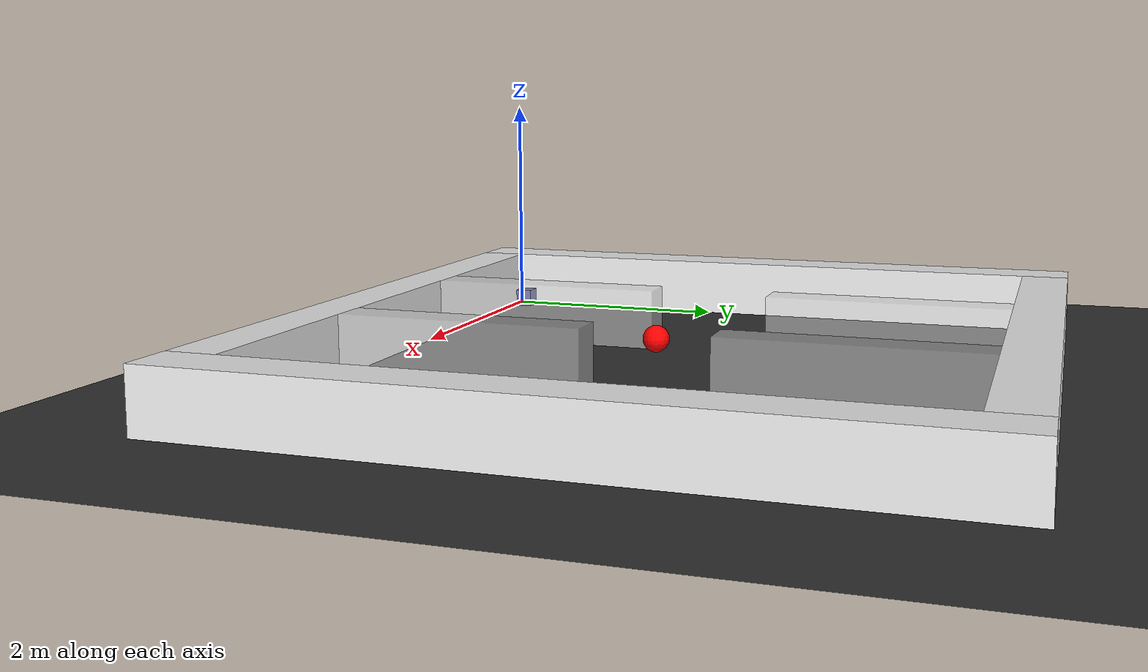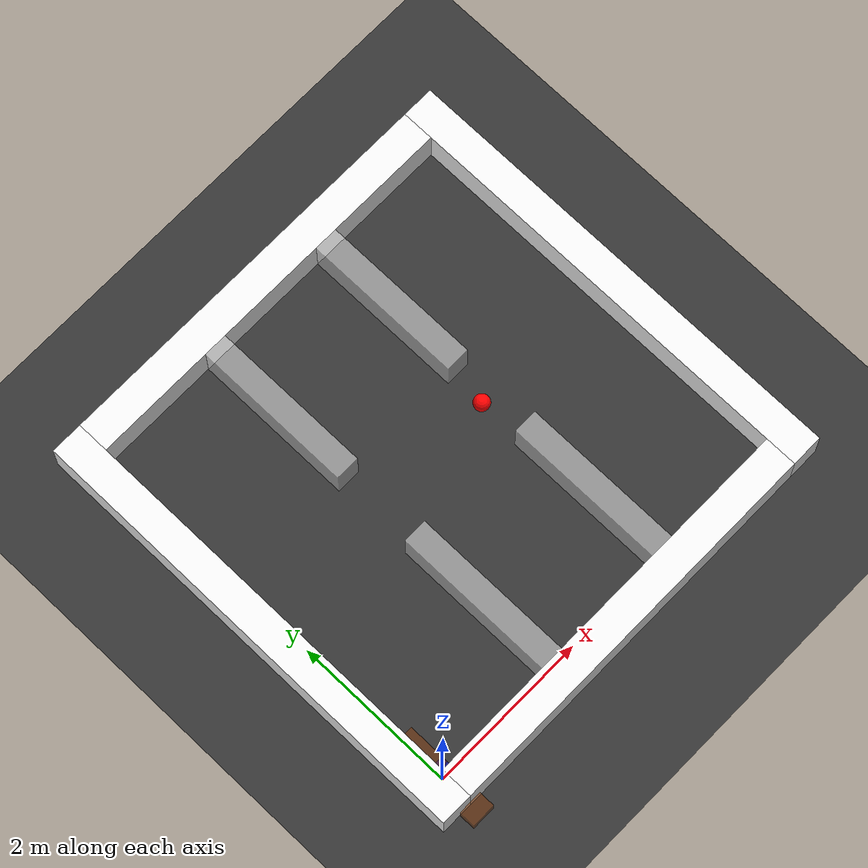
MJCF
<?xml version="1.0" encoding="utf-8"?>
<mujoco>
    <compiler angle="radian" coordinate="local"></compiler>
    <option timestep="0.005">
        <flag warmstart="enable"></flag>
    </option>

    <asset>
        <material name="floor_mat" specular="0" shininess="0.5" reflectance="0" rgba="0.2 0.2 0.2 1"></material>
        <material name="table_mat" specular="0" shininess="0.5" reflectance="0" rgba="0.93 0.93 0.93 1"></material>
        <material name="block_mat" specular="0" shininess="0.5" reflectance="0" rgba="0.1 0.1 0.5 1"></material>
        <material name="stick_mat" specular="0" shininess="0.5" reflectance="0" rgba="0.5 0.2 0.0 0.5"></material>
    </asset>

    <worldbody>
        <geom name="floor0" pos="2.5 2.5 0" size="30 30 1" type="plane" condim="3" material="floor_mat"></geom>
        <body name="floor0" pos="2.5 2.5 0">
            <site name="target0" pos="0.7 0.0 0.4" size="0.10 0.10 0.10" rgba="1 0 0 1" type="sphere"></site>
        </body>

        <geom name="bound0" pos="-0.2 2.5 0.25" size="0.2 2.9 0.25" type="box" mass="2000" material="table_mat"></geom>
        <geom name="bound1" pos="5.2 2.5 0.25" size="0.2 2.9 0.25" type="box" mass="2000" material="table_mat"></geom>
        <geom name="bound2" pos="2.5 -0.2 0.25" size="2.5 0.2 0.25" type="box" mass="2000" material="table_mat"></geom>
        <geom name="bound3" pos="2.5 5.2 0.25" size="2.5 0.2 0.25" type="box" mass="2000" material="table_mat"></geom>
        <geom name="wall0" pos="1.65 1.0 0.25" size="0.15 1.0 0.25" type="box" condim="3" mass="100"
              material="table_mat" rgba="0.93 0.93 0.93 0.5"></geom>
        <geom name="wall1" pos="1.65 4.0 0.25" size="0.15 1.0 0.25" type="box" condim="3" mass="100"
              material="table_mat" rgba="0.93 0.93 0.93 0.5"></geom>
        <geom name="wall2" pos="3.35 1.0 0.25" size="0.15 1.0 0.25" type="box" condim="3" mass="100"
              material="table_mat" rgba="0.93 0.93 0.93 0.5"></geom>
        <geom name="wall3" pos="3.35 4.0 0.25" size="0.15 1.0 0.25" type="box" condim="3" mass="100"
              material="table_mat" rgba="0.93 0.93 0.93 0.5"></geom>

        <body pos="0 0 0" name="masspoint">
            <geom name="masspoint" size="0.15" type="sphere" material="stick_mat" mass="1" euler="1.57 0 0"
                  rgba="0.1 1.0 0.1 1.0"></geom>
            <joint axis="1 0 0" name="masspoint:slidex" type="slide" damping="0.1"></joint>
            <joint axis="0 1 0" name="masspoint:slidey" type="slide" damping="0.1"></joint>
            <joint axis="0 0 1" name="masspoint:slidez" type="slide" damping="10000"></joint>
            <site name="masspoint" pos="0 0 0" size="0.02 0.02 0.02" rgba="1 0 0 1" type="sphere"></site>
        </body>

        <body name="object0" pos="0 0 0">
            <joint axis="1 0 0" name="object0:slidex" type="slide" damping="10"></joint>
            <joint axis="0 1 0" name="object0:slidey" type="slide" damping="10"></joint>
            <joint axis="0 0 1" name="object0:slidez" type="slide" damping="10000"></joint>
            <joint axis="0 0 1" name="object0:rz" type="hinge" damping="10"></joint>
            <geom size="0.15 0.15 0.15" type="box" name="object0" material="block_mat" mass="1" euler="0 0 0"></geom>
            <site name="object0" pos="0 0 0" size="0.02 0.02 0.02" rgba="1 0 0 1" type="sphere"></site>
        </body>

        <body name="object1" pos="0 0 0">
            <joint axis="1 0 0" name="object1:slidex" type="slide" damping="10"></joint>
            <joint axis="0 1 0" name="object1:slidey" type="slide" damping="10"></joint>
            <joint axis="0 0 1" name="object1:slidez" type="slide" damping="10000"></joint>
            <joint axis="0 0 1" name="object1:rz" type="hinge" damping="10"></joint>
            <geom size="0.15 0.60 0.15" type="box" name="object1" material="stick_mat" mass="5" euler="0 0 0"></geom>
            <site name="object1" pos="0 0 0" size="0.02 0.02 0.02" rgba="0.5 0.2 0 0" type="sphere"></site>
        </body>
        <body name="object2" pos="0 0 0">
            <joint axis="1 0 0" name="object2:slidex" type="slide" damping="10"></joint>
            <joint axis="0 1 0" name="object2:slidey" type="slide" damping="10"></joint>
            <joint axis="0 0 1" name="object2:slidez" type="slide" damping="10000"></joint>
            <joint axis="0 0 1" name="object2:rz" type="hinge" damping="10"></joint>
            <geom size="0.15 0.60 0.15" type="box" name="object2" material="stick_mat" rgba="1 0 1 0.5" mass="5"
                  euler="0 0 0"></geom>
            <site name="object2" pos="0 0 0" size="0.02 0.02 0.02" rgba="0.5 0.2 0 0" type="sphere"></site>
        </body>

        <light directional="true" ambient="0.2 0.2 0.2" diffuse="0.8 0.8 0.8" specular="0.3 0.3 0.3" castshadow="false"
               pos="0 0 4" dir="0 0 -1" name="light0"></light>
    </worldbody>

    <actuator>
        <motor gear="100" joint="masspoint:slidex"></motor>
        <motor gear="100" joint="masspoint:slidey"></motor>
    </actuator>
</mujoco>
